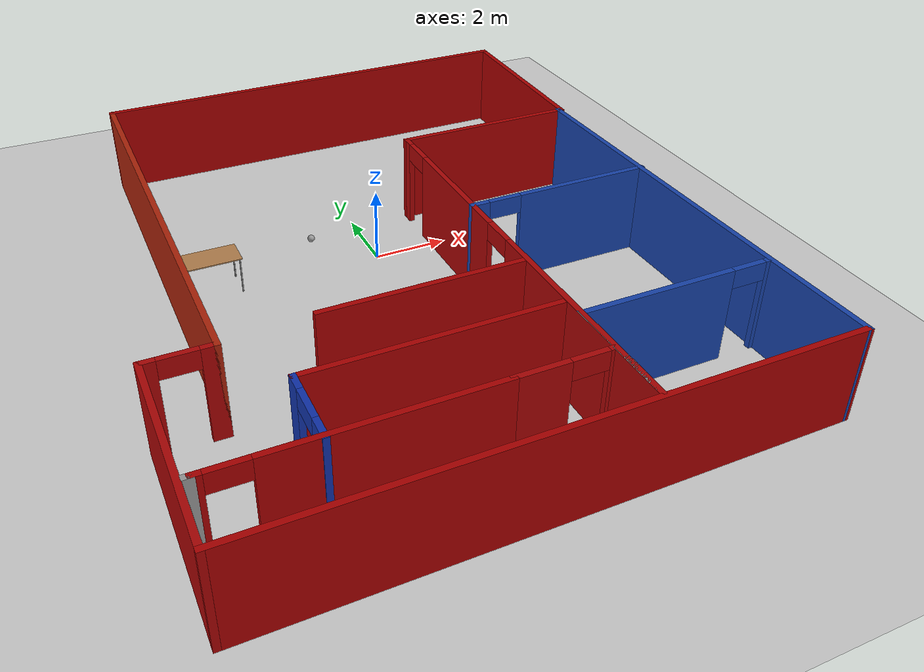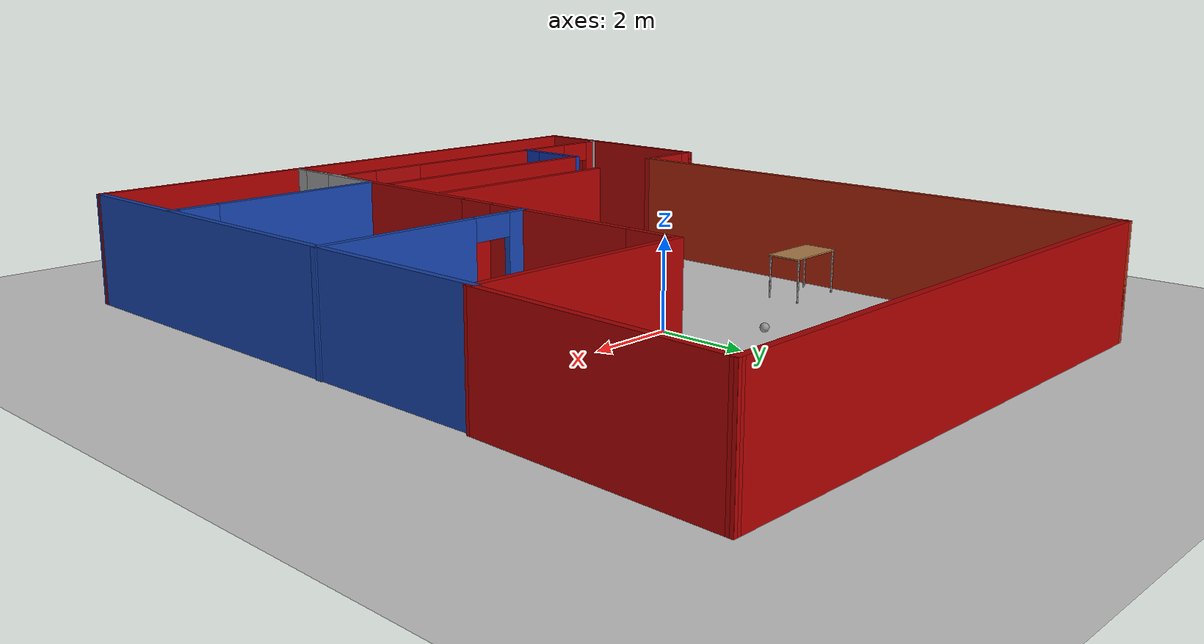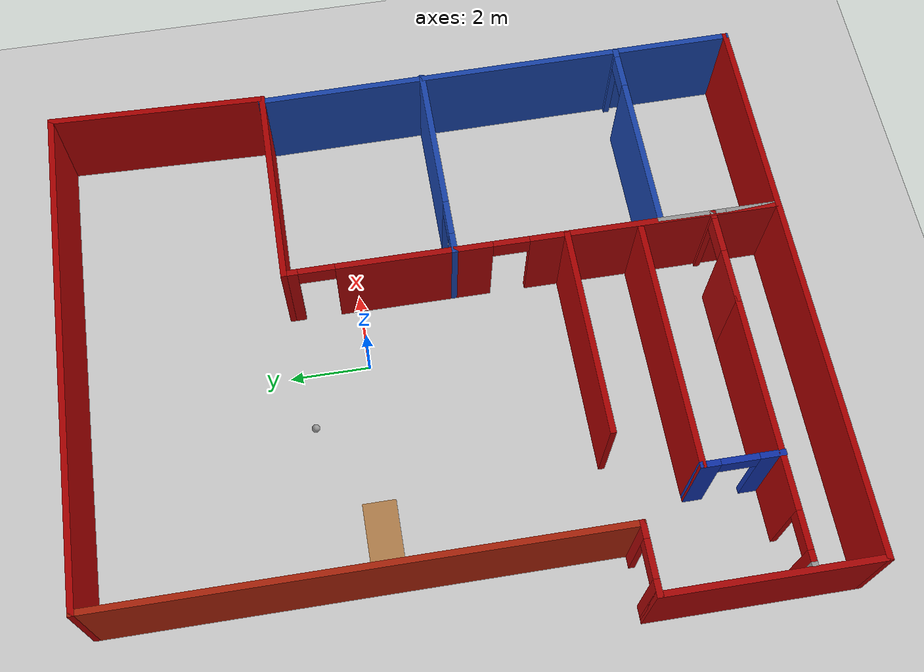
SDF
<sdf version="1.6">
 <world name="default">
  <model name="ground_plane">
   <static>1</static>
   <link name="link">
    <collision name="collision">
     <geometry><plane><normal>0 0 1</normal><size>100 100</size></plane></geometry>
     <surface>
      <contact><collide_bitmask>65535</collide_bitmask></contact>
      <friction><ode><mu>100</mu><mu2>50</mu2></ode></friction>
     </surface>
    </collision>
    <visual name="visual">
     <cast_shadows>0</cast_shadows>
     <geometry><plane><normal>0 0 1</normal><size>100 100</size></plane></geometry>
     <material>
      <script><uri>file://media/materials/scripts/gazebo.material</uri><name>Gazebo/Grey</name></script>
     </material>
    </visual>
   </link>
  </model>
  <model name="building">
   <pose>-0.16317 -1.67994 0 0 -0 0</pose>
   <link name="Wall_11">
    <pose>1.84896 -2.62566 0 0 0 -1.5708</pose>
    <visual name="Wall_11_Visual_0">
     <pose>-5.91997 0 1.25 0 -0 0</pose>
     <geometry><box><size>0.410051 0.15 2.5</size></box></geometry>
     <material>
      <script><uri>file://media/materials/scripts/gazebo.material</uri><name>Gazebo/Grey</name></script>
      <ambient>0.666667 0.0156863 0.0156863 1</ambient>
     </material>
     <meta><layer>0</layer></meta>
    </visual>
    <collision name="Wall_11_Collision_0">
     <geometry><box><size>0.410051 0.15 2.5</size></box></geometry>
     <pose>-5.91997 0 1.25 0 -0 0</pose>
    </collision>
    <visual name="Wall_11_Visual_1">
     <pose>-2.88646 0 1.25 0 -0 0</pose>
     <geometry><box><size>3.85699 0.15 2.5</size></box></geometry>
     <material>
      <script><uri>file://media/materials/scripts/gazebo.material</uri><name>Gazebo/Grey</name></script>
      <ambient>0.666667 0.0156863 0.0156863 1</ambient>
     </material>
     <meta><layer>0</layer></meta>
    </visual>
    <collision name="Wall_11_Collision_1">
     <geometry><box><size>3.85699 0.15 2.5</size></box></geometry>
     <pose>-2.88646 0 1.25 0 -0 0</pose>
    </collision>
    <visual name="Wall_11_Visual_2">
     <pose>3.03352 0 1.25 0 -0 0</pose>
     <geometry><box><size>6.18296 0.15 2.5</size></box></geometry>
     <material>
      <script><uri>file://media/materials/scripts/gazebo.material</uri><name>Gazebo/Grey</name></script>
      <ambient>0.666667 0.0156863 0.0156863 1</ambient>
     </material>
     <meta><layer>0</layer></meta>
    </visual>
    <collision name="Wall_11_Collision_2">
     <geometry><box><size>6.18296 0.15 2.5</size></box></geometry>
     <pose>3.03352 0 1.25 0 -0 0</pose>
    </collision>
    <visual name="Wall_11_Visual_3">
     <pose>-5.26495 0 2.25 0 -0 0</pose>
     <geometry><box><size>0.9 0.15 0.5</size></box></geometry>
     <material>
      <script><uri>file://media/materials/scripts/gazebo.material</uri><name>Gazebo/Grey</name></script>
      <ambient>0.666667 0.0156863 0.0156863 1</ambient>
     </material>
     <meta><layer>0</layer></meta>
    </visual>
    <collision name="Wall_11_Collision_3">
     <geometry><box><size>0.9 0.15 0.5</size></box></geometry>
     <pose>-5.26495 0 2.25 0 -0 0</pose>
    </collision>
    <visual name="Wall_11_Visual_4">
     <pose>-0.507962 0 2.25 0 -0 0</pose>
     <geometry><box><size>0.9 0.15 0.5</size></box></geometry>
     <material>
      <script><uri>file://media/materials/scripts/gazebo.material</uri><name>Gazebo/Grey</name></script>
      <ambient>0.666667 0.0156863 0.0156863 1</ambient>
     </material>
     <meta><layer>0</layer></meta>
    </visual>
    <collision name="Wall_11_Collision_4">
     <geometry><box><size>0.9 0.15 0.5</size></box></geometry>
     <pose>-0.507962 0 2.25 0 -0 0</pose>
    </collision>
   </link>
   <link name="Wall_12">
    <pose>1.84896 -7.25066 0 0 -0 1.5708</pose>
    <visual name="Wall_12_Visual_0">
     <pose>-1.30449 0 1.25 0 -0 0</pose>
     <geometry><box><size>0.391025 0.15 2.5</size></box></geometry>
     <material>
      <script><uri>file://media/materials/scripts/gazebo.material</uri><name>Gazebo/Grey</name></script>
      <ambient>1 1 1 1</ambient>
     </material>
     <meta><layer>0</layer></meta>
    </visual>
    <collision name="Wall_12_Collision_0">
     <geometry><box><size>0.391025 0.15 2.5</size></box></geometry>
     <pose>-1.30449 0 1.25 0 -0 0</pose>
    </collision>
    <visual name="Wall_12_Visual_1">
     <pose>0.645513 0 1.25 0 -0 0</pose>
     <geometry><box><size>1.70897 0.15 2.5</size></box></geometry>
     <material>
      <script><uri>file://media/materials/scripts/gazebo.material</uri><name>Gazebo/Grey</name></script>
      <ambient>1 1 1 1</ambient>
     </material>
     <meta><layer>0</layer></meta>
    </visual>
    <collision name="Wall_12_Collision_1">
     <geometry><box><size>1.70897 0.15 2.5</size></box></geometry>
     <pose>0.645513 0 1.25 0 -0 0</pose>
    </collision>
    <visual name="Wall_12_Visual_2">
     <pose>-0.658975 0 2.25 0 -0 0</pose>
     <geometry><box><size>0.9 0.15 0.5</size></box></geometry>
     <material>
      <script><uri>file://media/materials/scripts/gazebo.material</uri><name>Gazebo/Grey</name></script>
      <ambient>1 1 1 1</ambient>
     </material>
     <meta><layer>0</layer></meta>
    </visual>
    <collision name="Wall_12_Collision_2">
     <geometry><box><size>0.9 0.15 0.5</size></box></geometry>
     <pose>-0.658975 0 2.25 0 -0 0</pose>
    </collision>
   </link>
   <link name="Wall_13">
    <pose>4.39896 -5.82566 0 0 -0 0</pose>
    <visual name="Wall_13_Visual_0">
     <pose>-0.569063 0 1.25 0 -0 0</pose>
     <geometry><box><size>4.11187 0.15 2.5</size></box></geometry>
     <material>
      <script><uri>file://media/materials/scripts/gazebo.material</uri><name>Gazebo/Grey</name></script>
      <ambient>0.0901961 0.262745 0.666667 1</ambient>
     </material>
     <meta><layer>0</layer></meta>
    </visual>
    <collision name="Wall_13_Collision_0">
     <geometry><box><size>4.11187 0.15 2.5</size></box></geometry>
     <pose>-0.569063 0 1.25 0 -0 0</pose>
    </collision>
    <visual name="Wall_13_Visual_1">
     <pose>2.50594 0 1.25 0 -0 0</pose>
     <geometry><box><size>0.238126 0.15 2.5</size></box></geometry>
     <material>
      <script><uri>file://media/materials/scripts/gazebo.material</uri><name>Gazebo/Grey</name></script>
      <ambient>0.0901961 0.262745 0.666667 1</ambient>
     </material>
     <meta><layer>0</layer></meta>
    </visual>
    <collision name="Wall_13_Collision_1">
     <geometry><box><size>0.238126 0.15 2.5</size></box></geometry>
     <pose>2.50594 0 1.25 0 -0 0</pose>
    </collision>
    <visual name="Wall_13_Visual_2">
     <pose>1.93687 0 2.25 0 -0 0</pose>
     <geometry><box><size>0.9 0.15 0.5</size></box></geometry>
     <material>
      <script><uri>file://media/materials/scripts/gazebo.material</uri><name>Gazebo/Grey</name></script>
      <ambient>0.0901961 0.262745 0.666667 1</ambient>
     </material>
     <meta><layer>0</layer></meta>
    </visual>
    <collision name="Wall_13_Collision_2">
     <geometry><box><size>0.9 0.15 0.5</size></box></geometry>
     <pose>1.93687 0 2.25 0 -0 0</pose>
    </collision>
   </link>
   <link name="Wall_15">
    <pose>4.39896 -0.725658 0 0 -0 3.14159</pose>
    <visual name="Wall_15_Visual_0">
     <pose>-0.714093 0 1.25 0 -0 0</pose>
     <geometry><box><size>3.82181 0.15 2.5</size></box></geometry>
     <material>
      <script><uri>file://media/materials/scripts/gazebo.material</uri><name>Gazebo/Grey</name></script>
      <ambient>0.0901961 0.262745 0.666667 1</ambient>
     </material>
     <meta><layer>0</layer></meta>
    </visual>
    <collision name="Wall_15_Collision_0">
     <geometry><box><size>3.82181 0.15 2.5</size></box></geometry>
     <pose>-0.714093 0 1.25 0 -0 0</pose>
    </collision>
    <visual name="Wall_15_Visual_1">
     <pose>2.36091 0 1.25 0 -0 0</pose>
     <geometry><box><size>0.528186 0.15 2.5</size></box></geometry>
     <material>
      <script><uri>file://media/materials/scripts/gazebo.material</uri><name>Gazebo/Grey</name></script>
      <ambient>0.0901961 0.262745 0.666667 1</ambient>
     </material>
     <meta><layer>0</layer></meta>
    </visual>
    <collision name="Wall_15_Collision_1">
     <geometry><box><size>0.528186 0.15 2.5</size></box></geometry>
     <pose>2.36091 0 1.25 0 -0 0</pose>
    </collision>
    <visual name="Wall_15_Visual_2">
     <pose>1.64681 0 2.25 0 -0 0</pose>
     <geometry><box><size>0.9 0.15 0.5</size></box></geometry>
     <material>
      <script><uri>file://media/materials/scripts/gazebo.material</uri><name>Gazebo/Grey</name></script>
      <ambient>0.0901961 0.262745 0.666667 1</ambient>
     </material>
     <meta><layer>0</layer></meta>
    </visual>
    <collision name="Wall_15_Collision_2">
     <geometry><box><size>0.9 0.15 0.5</size></box></geometry>
     <pose>1.64681 0 2.25 0 -0 0</pose>
    </collision>
   </link>
   <link name="Wall_19">
    <pose>0.662742 -7.12848 0 0 -0 0</pose>
    <visual name="Wall_19_Visual_0">
     <pose>-0.560443 0 1.25 0 -0 0</pose>
     <geometry><box><size>1.37911 0.15 2.5</size></box></geometry>
     <material>
      <script><uri>file://media/materials/scripts/gazebo.material</uri><name>Gazebo/Grey</name></script>
      <ambient>0.666667 0.0156863 0.0156863 1</ambient>
     </material>
     <meta><layer>0</layer></meta>
    </visual>
    <collision name="Wall_19_Collision_0">
     <geometry><box><size>1.37911 0.15 2.5</size></box></geometry>
     <pose>-0.560443 0 1.25 0 -0 0</pose>
    </collision>
    <visual name="Wall_19_Visual_1">
     <pose>1.13956 0 1.25 0 -0 0</pose>
     <geometry><box><size>0.220886 0.15 2.5</size></box></geometry>
     <material>
      <script><uri>file://media/materials/scripts/gazebo.material</uri><name>Gazebo/Grey</name></script>
      <ambient>0.666667 0.0156863 0.0156863 1</ambient>
     </material>
     <meta><layer>0</layer></meta>
    </visual>
    <collision name="Wall_19_Collision_1">
     <geometry><box><size>0.220886 0.15 2.5</size></box></geometry>
     <pose>1.13956 0 1.25 0 -0 0</pose>
    </collision>
    <visual name="Wall_19_Visual_2">
     <pose>0.579114 0 2.25 0 -0 0</pose>
     <geometry><box><size>0.9 0.15 0.5</size></box></geometry>
     <material>
      <script><uri>file://media/materials/scripts/gazebo.material</uri><name>Gazebo/Grey</name></script>
      <ambient>0.666667 0.0156863 0.0156863 1</ambient>
     </material>
     <meta><layer>0</layer></meta>
    </visual>
    <collision name="Wall_19_Collision_2">
     <geometry><box><size>0.9 0.15 0.5</size></box></geometry>
     <pose>0.579114 0 2.25 0 -0 0</pose>
    </collision>
   </link>
   <link name="Wall_2">
    <collision name="Wall_2_Collision">
     <geometry><box><size>12.3747 0.15 2.5</size></box></geometry>
     <pose>0 0 1.25 0 -0 0</pose>
    </collision>
    <visual name="Wall_2_Visual">
     <pose>0 0 1.25 0 -0 0</pose>
     <geometry><box><size>12.3747 0.15 2.5</size></box></geometry>
     <material>
      <script><uri>file://media/materials/scripts/gazebo.material</uri><name>Gazebo/Grey</name></script>
      <ambient>0.0901961 0.262745 0.666667 1</ambient>
     </material>
     <meta><layer>0</layer></meta>
    </visual>
    <pose>6.93693 -2.66363 0 0 0 -1.56065</pose>
   </link>
   <link name="Wall_22">
    <pose>-3.68726 -7.12848 0 0 -0 3.14159</pose>
    <visual name="Wall_22_Visual_0">
     <pose>-0.585034 0 1.25 0 -0 0</pose>
     <geometry><box><size>5.32993 0.15 2.5</size></box></geometry>
     <material>
      <script><uri>file://media/materials/scripts/gazebo.material</uri><name>Gazebo/Grey</name></script>
      <ambient>0.666667 0 0 1</ambient>
     </material>
     <meta><layer>0</layer></meta>
    </visual>
    <collision name="Wall_22_Collision_0">
     <geometry><box><size>5.32993 0.15 2.5</size></box></geometry>
     <pose>-0.585034 0 1.25 0 -0 0</pose>
    </collision>
    <visual name="Wall_22_Visual_1">
     <pose>3.11497 0 1.25 0 -0 0</pose>
     <geometry><box><size>0.270068 0.15 2.5</size></box></geometry>
     <material>
      <script><uri>file://media/materials/scripts/gazebo.material</uri><name>Gazebo/Grey</name></script>
      <ambient>0.666667 0 0 1</ambient>
     </material>
     <meta><layer>0</layer></meta>
    </visual>
    <collision name="Wall_22_Collision_1">
     <geometry><box><size>0.270068 0.15 2.5</size></box></geometry>
     <pose>3.11497 0 1.25 0 -0 0</pose>
    </collision>
    <visual name="Wall_22_Visual_2">
     <pose>2.52993 0 2.25 0 -0 0</pose>
     <geometry><box><size>0.9 0.15 0.5</size></box></geometry>
     <material>
      <script><uri>file://media/materials/scripts/gazebo.material</uri><name>Gazebo/Grey</name></script>
      <ambient>0.666667 0 0 1</ambient>
     </material>
     <meta><layer>0</layer></meta>
    </visual>
    <collision name="Wall_22_Collision_2">
     <geometry><box><size>0.9 0.15 0.5</size></box></geometry>
     <pose>2.52993 0 2.25 0 -0 0</pose>
    </collision>
   </link>
   <link name="Wall_23">
    <collision name="Wall_23_Collision">
     <geometry><box><size>0.25 0.15 2.5</size></box></geometry>
     <pose>0 0 1.25 0 -0 0</pose>
    </collision>
    <visual name="Wall_23_Visual">
     <pose>0 0 1.25 0 -0 0</pose>
     <geometry><box><size>0.25 0.15 2.5</size></box></geometry>
     <material>
      <script><uri>file://media/materials/scripts/gazebo.material</uri><name>Gazebo/Grey</name></script>
      <ambient>1 1 1 1</ambient>
     </material>
     <meta><layer>0</layer></meta>
    </visual>
    <pose>-6.91226 -7.12848 0 0 -0 3.14159</pose>
   </link>
   <link name="Wall_25">
    <pose>-4.41404 -6.226 0 0 -0 1.5708</pose>
    <visual name="Wall_25_Visual_0">
     <pose>-0.691286 0 1.25 0 -0 0</pose>
     <geometry><box><size>0.617427 0.15 2.5</size></box></geometry>
     <material>
      <script><uri>file://media/materials/scripts/gazebo.material</uri><name>Gazebo/Grey</name></script>
      <ambient>0.0627451 0.196078 0.666667 1</ambient>
     </material>
     <meta><layer>0</layer></meta>
    </visual>
    <collision name="Wall_25_Collision_0">
     <geometry><box><size>0.617427 0.15 2.5</size></box></geometry>
     <pose>-0.691286 0 1.25 0 -0 0</pose>
    </collision>
    <visual name="Wall_25_Visual_1">
     <pose>0.758714 0 1.25 0 -0 0</pose>
     <geometry><box><size>0.482573 0.15 2.5</size></box></geometry>
     <material>
      <script><uri>file://media/materials/scripts/gazebo.material</uri><name>Gazebo/Grey</name></script>
      <ambient>0.0627451 0.196078 0.666667 1</ambient>
     </material>
     <meta><layer>0</layer></meta>
    </visual>
    <collision name="Wall_25_Collision_1">
     <geometry><box><size>0.482573 0.15 2.5</size></box></geometry>
     <pose>0.758714 0 1.25 0 -0 0</pose>
    </collision>
    <visual name="Wall_25_Visual_2">
     <pose>0.067427 0 2.25 0 -0 0</pose>
     <geometry><box><size>0.9 0.15 0.5</size></box></geometry>
     <material>
      <script><uri>file://media/materials/scripts/gazebo.material</uri><name>Gazebo/Grey</name></script>
      <ambient>0.0627451 0.196078 0.666667 1</ambient>
     </material>
     <meta><layer>0</layer></meta>
    </visual>
    <collision name="Wall_25_Collision_2">
     <geometry><box><size>0.9 0.15 0.5</size></box></geometry>
     <pose>0.067427 0 2.25 0 -0 0</pose>
    </collision>
   </link>
   <link name="Wall_26">
    <collision name="Wall_26_Collision">
     <geometry><box><size>6.25 0.15 2.5</size></box></geometry>
     <pose>0 0 1.25 0 -0 0</pose>
    </collision>
    <visual name="Wall_26_Visual">
     <pose>0 0 1.25 0 -0 0</pose>
     <geometry><box><size>6.25 0.15 2.5</size></box></geometry>
     <material>
      <script><uri>file://media/materials/scripts/gazebo.material</uri><name>Gazebo/Grey</name></script>
      <ambient>0.666667 0 0 1</ambient>
     </material>
     <meta><layer>0</layer></meta>
    </visual>
    <pose>-1.36404 -5.301 0 0 -0 0</pose>
   </link>
   <link name="Wall_29">
    <collision name="Wall_29_Collision">
     <geometry><box><size>5.25 0.15 2.5</size></box></geometry>
     <pose>0 0 1.25 0 -0 0</pose>
    </collision>
    <visual name="Wall_29_Visual">
     <pose>0 0 1.25 0 -0 0</pose>
     <geometry><box><size>5.25 0.15 2.5</size></box></geometry>
     <material>
      <script><uri>file://media/materials/scripts/gazebo.material</uri><name>Gazebo/Grey</name></script>
      <ambient>0.666667 0 0 1</ambient>
     </material>
     <meta><layer>0</layer></meta>
    </visual>
    <pose>-0.734982 -3.49267 0 0 -0 3.14159</pose>
   </link>
   <link name="Wall_3">
    <collision name="Wall_3_Collision">
     <geometry><box><size>14.25 0.15 2.5</size></box></geometry>
     <pose>0 0 1.25 0 -0 0</pose>
    </collision>
    <visual name="Wall_3_Visual">
     <pose>0 0 1.25 0 -0 0</pose>
     <geometry><box><size>14.25 0.15 2.5</size></box></geometry>
     <material>
      <script><uri>file://media/materials/scripts/gazebo.material</uri><name>Gazebo/Grey</name></script>
      <ambient>0.666667 0 0 1</ambient>
     </material>
     <meta><layer>0</layer></meta>
    </visual>
    <pose>-0.051036 -8.77566 0 0 -0 3.14159</pose>
   </link>
   <link name="Wall_37">
    <collision name="Wall_37_Collision">
     <geometry><box><size>12.75 0.15 2.5</size></box></geometry>
     <pose>0 0 1.25 0 -0 0</pose>
    </collision>
    <visual name="Wall_37_Visual">
     <pose>0 0 1.25 0 -0 0</pose>
     <geometry><box><size>12.75 0.15 2.5</size></box></geometry>
     <material>
      <script><uri>file://media/materials/scripts/gazebo.material</uri><name>Gazebo/Grey</name></script>
      <ambient>0.666667 0 0 1</ambient>
     </material>
     <meta><layer>0</layer></meta>
    </visual>
    <pose>0.798964 8.77434 0 0 -0 0</pose>
   </link>
   <link name="Wall_4">
    <collision name="Wall_4_Collision">
     <geometry><box><size>5.25 0.15 2.5</size></box></geometry>
     <pose>0 0 1.25 0 -0 0</pose>
    </collision>
    <visual name="Wall_4_Visual">
     <pose>0 0 1.25 0 -0 0</pose>
     <geometry><box><size>5.25 0.15 2.5</size></box></geometry>
     <material>
      <script><uri>file://media/materials/scripts/gazebo.material</uri><name>Gazebo/Grey</name></script>
      <ambient>0.666667 0.0156863 0.0156863 1</ambient>
     </material>
     <meta><layer>0</layer></meta>
    </visual>
    <pose>-7.10104 -6.22566 0 0 -0 1.5708</pose>
   </link>
   <link name="Wall_40">
    <collision name="Wall_40_Collision">
     <geometry><box><size>5.25 0.15 2.5</size></box></geometry>
     <pose>0 0 1.25 0 -0 0</pose>
    </collision>
    <visual name="Wall_40_Visual">
     <pose>0 0 1.25 0 -0 0</pose>
     <geometry><box><size>5.25 0.15 2.5</size></box></geometry>
     <material>
      <script><uri>file://media/materials/scripts/gazebo.material</uri><name>Gazebo/Grey</name></script>
      <ambient>0.666667 0 0 1</ambient>
     </material>
     <meta><layer>0</layer></meta>
    </visual>
    <pose>4.39896 3.42434 0 0 -0 0</pose>
   </link>
   <link name="Wall_42">
    <collision name="Wall_42_Collision">
     <geometry><box><size>5.5021 0.15 2.5</size></box></geometry>
     <pose>0 0 1.25 0 -0 0</pose>
    </collision>
    <visual name="Wall_42_Visual">
     <pose>0 0 1.25 0 -0 0</pose>
     <geometry><box><size>5.5021 0.15 2.5</size></box></geometry>
     <material>
      <script><uri>file://media/materials/scripts/gazebo.material</uri><name>Gazebo/Grey</name></script>
      <ambient>0.666667 0 0 1</ambient>
     </material>
     <meta><layer>0</layer></meta>
    </visual>
    <pose>7.02396 6.09934 0 0 -0 1.54277</pose>
   </link>
   <link name="Wall_5">
    <pose>-6.30104 -3.67566 0 0 -0 0</pose>
    <visual name="Wall_5_Visual_0">
     <pose>-0.666059 0 1.25 0 -0 0</pose>
     <geometry><box><size>0.417882 0.15 2.5</size></box></geometry>
     <material>
      <script><uri>file://media/materials/scripts/gazebo.material</uri><name>Gazebo/Grey</name></script>
      <ambient>0.666667 0.0156863 0.0156863 1</ambient>
     </material>
     <meta><layer>0</layer></meta>
    </visual>
    <collision name="Wall_5_Collision_0">
     <geometry><box><size>0.417882 0.15 2.5</size></box></geometry>
     <pose>-0.666059 0 1.25 0 -0 0</pose>
    </collision>
    <visual name="Wall_5_Visual_1">
     <pose>0.658941 0 1.25 0 -0 0</pose>
     <geometry><box><size>0.432118 0.15 2.5</size></box></geometry>
     <material>
      <script><uri>file://media/materials/scripts/gazebo.material</uri><name>Gazebo/Grey</name></script>
      <ambient>0.666667 0.0156863 0.0156863 1</ambient>
     </material>
     <meta><layer>0</layer></meta>
    </visual>
    <collision name="Wall_5_Collision_1">
     <geometry><box><size>0.432118 0.15 2.5</size></box></geometry>
     <pose>0.658941 0 1.25 0 -0 0</pose>
    </collision>
    <visual name="Wall_5_Visual_2">
     <pose>-0.007118 0 2.25 0 -0 0</pose>
     <geometry><box><size>0.9 0.15 0.5</size></box></geometry>
     <material>
      <script><uri>file://media/materials/scripts/gazebo.material</uri><name>Gazebo/Grey</name></script>
      <ambient>0.666667 0.0156863 0.0156863 1</ambient>
     </material>
     <meta><layer>0</layer></meta>
    </visual>
    <collision name="Wall_5_Collision_2">
     <geometry><box><size>0.9 0.15 0.5</size></box></geometry>
     <pose>-0.007118 0 2.25 0 -0 0</pose>
    </collision>
   </link>
   <link name="Wall_50">
    <collision name="Wall_50_Collision">
     <geometry><box><size>12.6 0.15 2.5</size></box></geometry>
     <pose>0 0 1.25 0 -0 0</pose>
    </collision>
    <visual name="Wall_50_Visual">
     <pose>0 0 1.25 0 -0 0</pose>
     <geometry><box><size>12.6 0.15 2.5</size></box></geometry>
     <material>
      <script><uri>file://media/materials/scripts/gazebo.material</uri><name>Gazebo/Grey</name></script>
      <ambient>0.666667 0.133333 0.0392157 1</ambient>
     </material>
     <meta><layer>0</layer></meta>
    </visual>
    <pose>-5.50103 2.54934 0 0 0 -1.5708</pose>
   </link>
   <static>1</static>
  </model>
  <model name="table">
   <static>1</static>
   <link name="link">
    <collision name="surface">
     <pose>0 0 1 0 -0 0</pose>
     <geometry><box><size>1.5 0.8 0.03</size></box></geometry>
     <surface><friction><ode><mu>0.6</mu><mu2>0.6</mu2></ode></friction></surface>
    </collision>
    <visual name="visual1">
     <pose>0 0 1 0 -0 0</pose>
     <geometry><box><size>1.5 0.8 0.03</size></box></geometry>
     <material>
      <script><uri>file://media/materials/scripts/gazebo.material</uri><name>Gazebo/Wood</name></script>
     </material>
    </visual>
    <collision name="front_left_leg">
     <pose>0.68 0.38 0.5 0 -0 0</pose>
     <geometry><cylinder><radius>0.02</radius><length>1</length></cylinder></geometry>
    </collision>
    <visual name="front_left_leg">
     <pose>0.68 0.38 0.5 0 -0 0</pose>
     <geometry><cylinder><radius>0.02</radius><length>1</length></cylinder></geometry>
     <material>
      <script><uri>file://media/materials/scripts/gazebo.material</uri><name>Gazebo/Grey</name></script>
     </material>
    </visual>
    <collision name="front_right_leg">
     <pose>0.68 -0.38 0.5 0 -0 0</pose>
     <geometry><cylinder><radius>0.02</radius><length>1</length></cylinder></geometry>
    </collision>
    <visual name="front_right_leg">
     <pose>0.68 -0.38 0.5 0 -0 0</pose>
     <geometry><cylinder><radius>0.02</radius><length>1</length></cylinder></geometry>
     <material>
      <script><uri>file://media/materials/scripts/gazebo.material</uri><name>Gazebo/Grey</name></script>
     </material>
    </visual>
    <collision name="back_right_leg">
     <pose>-0.68 -0.38 0.5 0 -0 0</pose>
     <geometry><cylinder><radius>0.02</radius><length>1</length></cylinder></geometry>
    </collision>
    <visual name="back_right_leg">
     <pose>-0.68 -0.38 0.5 0 -0 0</pose>
     <geometry><cylinder><radius>0.02</radius><length>1</length></cylinder></geometry>
     <material>
      <script><uri>file://media/materials/scripts/gazebo.material</uri><name>Gazebo/Grey</name></script>
     </material>
    </visual>
    <collision name="back_left_leg">
     <pose>-0.68 0.38 0.5 0 -0 0</pose>
     <geometry><cylinder><radius>0.02</radius><length>1</length></cylinder></geometry>
    </collision>
    <visual name="back_left_leg">
     <pose>-0.68 0.38 0.5 0 -0 0</pose>
     <geometry><cylinder><radius>0.02</radius><length>1</length></cylinder></geometry>
     <material>
      <script><uri>file://media/materials/scripts/gazebo.material</uri><name>Gazebo/Grey</name></script>
     </material>
    </visual>
   </link>
   <pose>-4.55455 0.270382 0 0 -0 0</pose>
  </model>
  <model name="my_ball">
   <link name="link_0">
    <inertial>
     <mass>1</mass>
     <inertia><ixx>0.1</ixx><ixy>0</ixy><ixz>0</ixz><iyy>0.1</iyy><iyz>0</iyz><izz>0.1</izz></inertia>
     <pose>0 0 0.1 0 -0 0</pose>
    </inertial>
    <visual name="visual">
     <geometry><sphere><radius>0.1</radius></sphere></geometry>
     <material>
      <lighting>1</lighting>
      <script><uri>file://media/materials/scripts/gazebo.material</uri><name>Gazebo/Grey</name></script>
      <shader type="pixel"><normal_map>__default__</normal_map></shader>
      <ambient>1 1 1 1</ambient>
      <diffuse>1 1 1 1</diffuse>
      <specular>1 1 1 1</specular>
      <emissive>1 1 1 1</emissive>
     </material>
    </visual>
    <collision name="collision">
     <geometry><sphere><radius>0.1</radius></sphere></geometry>
     <surface>
      <friction>
       <ode><mu>1</mu><mu2>1</mu2><fdir1>0 0 0</fdir1><slip1>0</slip1><slip2>0</slip2></ode>
       <torsional>
        <coefficient>1</coefficient>
        <patch_radius>0</patch_radius>
        <surface_radius>0</surface_radius>
        <use_patch_radius>1</use_patch_radius>
        <ode><slip>0</slip></ode>
       </torsional>
      </friction>
      <bounce><restitution_coefficient>0</restitution_coefficient><threshold>1e+06</threshold></bounce>
      <contact>
       <collide_without_contact>0</collide_without_contact>
       <collide_without_contact_bitmask>1</collide_without_contact_bitmask>
       <collide_bitmask>1</collide_bitmask>
       <ode>
        <soft_cfm>0</soft_cfm>
        <soft_erp>0.2</soft_erp>
        <kp>1e+13</kp>
        <kd>1</kd>
        <max_vel>0.01</max_vel>
        <min_depth>0</min_depth>
       </ode>
       <bullet>
        <split_impulse>1</split_impulse>
        <split_impulse_penetration_threshold>-0.01</split_impulse_penetration_threshold>
        <soft_cfm>0</soft_cfm>
        <soft_erp>0.2</soft_erp>
        <kp>1e+13</kp>
        <kd>1</kd>
       </bullet>
      </contact>
     </surface>
    </collision>
   </link>
   <static>0</static>
   <pose>-1.41725 1.53243 0.1 0 -0 0</pose>
  </model>
 </world>
</sdf>
